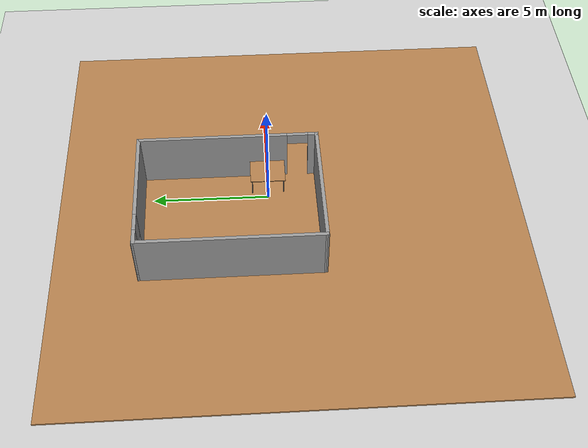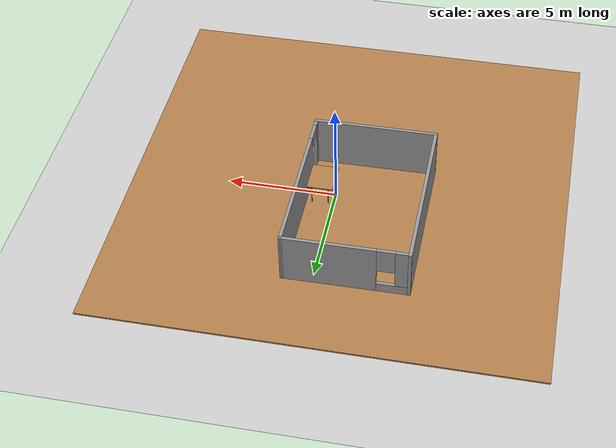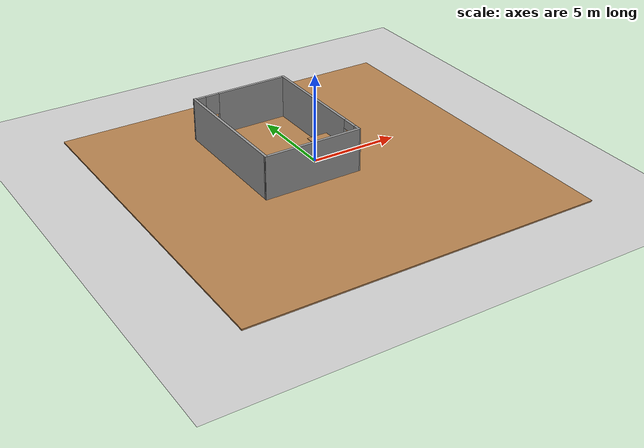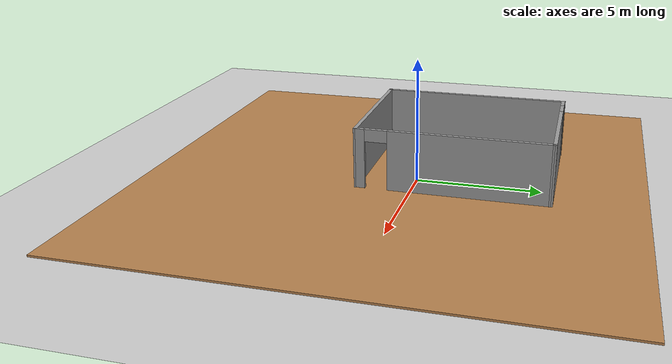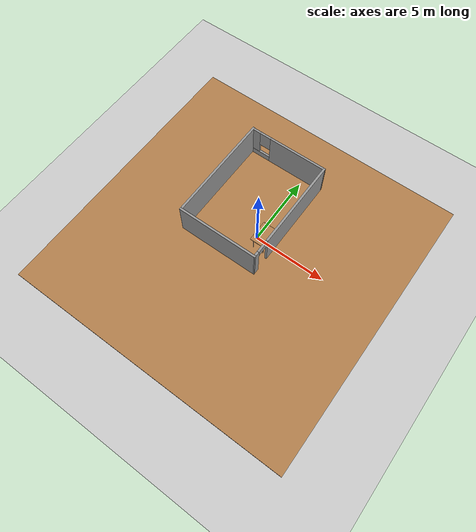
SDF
<sdf version="1.6">
 <world name="default">
  <light name="sun" type="directional">
   <pose>0 0 10 0 -0 0</pose>
   <diffuse>0.8 0.8 0.8 1</diffuse>
   <specular>0.1 0.1 0.1 1</specular>
   <attenuation>
    <range>1000</range>
    <constant>0.9</constant>
    <linear>0.01</linear>
    <quadratic>0.001</quadratic>
   </attenuation>
   <direction>-0.5 0.5 -1</direction>
  </light>
  <model name="ground_plane">
   <static>1</static>
   <link name="link">
    <collision name="collision">
     <geometry><plane><normal>0 0 1</normal><size>100 100</size></plane></geometry>
     <surface><friction><ode><mu>100</mu><mu2>50</mu2></ode></friction></surface>
    </collision>
    <visual name="visual">
     <cast_shadows>0</cast_shadows>
     <geometry><plane><normal>0 0 1</normal><size>100 100</size></plane></geometry>
     <material>
      <script><uri>file://media/materials/scripts/gazebo.material</uri><name>Gazebo/Grey</name></script>
     </material>
    </visual>
   </link>
  </model>
  <gravity>0 0 -9.8</gravity>
  <magnetic_field>6e-06 2.3e-05 -4.2e-05</magnetic_field>
  <atmosphere type="adiabatic"/>
  <physics name="default_physics" default="0" type="ode">
   <max_step_size>0.001</max_step_size>
   <real_time_factor>1</real_time_factor>
   <real_time_update_rate>1000</real_time_update_rate>
  </physics>
  <scene><ambient>0.4 0.4 0.4 1</ambient><background>0.7 0.7 0.7 1</background><shadows>1</shadows></scene>
  <spherical_coordinates>
   <surface_model>EARTH_WGS84</surface_model>
   <latitude_deg>0</latitude_deg>
   <longitude_deg>0</longitude_deg>
   <elevation>0</elevation>
   <heading_deg>0</heading_deg>
  </spherical_coordinates>
  <model name="IMR_table">
   <static>1</static>
   <link name="link">
    <collision name="surface">
     <pose>0 0 1 0 -0 0</pose>
     <geometry><box><size>1.5 1.2 0.03</size></box></geometry>
     <surface><friction><ode><mu>0.6</mu><mu2>0.6</mu2></ode></friction></surface>
    </collision>
    <visual name="visual1">
     <pose>0 0 1 0 -0 0</pose>
     <geometry><box><size>1.5 1.2 0.03</size></box></geometry>
     <material>
      <script>
       <uri>model://IMR_table/materials/scripts/</uri>
       <uri>model://IMR_table/materials/textures/</uri>
       <name>LIGHTWOOD</name>
      </script>
     </material>
    </visual>
    <collision name="front_left_leg">
     <pose>0.68 0.38 0.5 0 -0 0</pose>
     <geometry><cylinder><radius>0.02</radius><length>1</length></cylinder></geometry>
    </collision>
    <visual name="front_left_leg">
     <pose>0.68 0.38 0.5 0 -0 0</pose>
     <geometry><cylinder><radius>0.02</radius><length>1</length></cylinder></geometry>
     <material>
      <script><uri>file://media/materials/scripts/gazebo.material</uri><name>Gazebo/Grey</name></script>
     </material>
    </visual>
    <collision name="front_right_leg">
     <pose>0.68 -0.38 0.5 0 -0 0</pose>
     <geometry><cylinder><radius>0.02</radius><length>1</length></cylinder></geometry>
    </collision>
    <visual name="front_right_leg">
     <pose>0.68 -0.38 0.5 0 -0 0</pose>
     <geometry><cylinder><radius>0.02</radius><length>1</length></cylinder></geometry>
     <material>
      <script><uri>file://media/materials/scripts/gazebo.material</uri><name>Gazebo/Grey</name></script>
     </material>
    </visual>
    <collision name="back_right_leg">
     <pose>-0.68 -0.38 0.5 0 -0 0</pose>
     <geometry><cylinder><radius>0.02</radius><length>1</length></cylinder></geometry>
    </collision>
    <visual name="back_right_leg">
     <pose>-0.68 -0.38 0.5 0 -0 0</pose>
     <geometry><cylinder><radius>0.02</radius><length>1</length></cylinder></geometry>
     <material>
      <script><uri>file://media/materials/scripts/gazebo.material</uri><name>Gazebo/Grey</name></script>
     </material>
    </visual>
    <collision name="back_left_leg">
     <pose>-0.68 0.38 0.5 0 -0 0</pose>
     <geometry><cylinder><radius>0.02</radius><length>1</length></cylinder></geometry>
    </collision>
    <visual name="back_left_leg">
     <pose>-0.68 0.38 0.5 0 -0 0</pose>
     <geometry><cylinder><radius>0.02</radius><length>1</length></cylinder></geometry>
     <material>
      <script><uri>file://media/materials/scripts/gazebo.material</uri><name>Gazebo/Grey</name></script>
     </material>
    </visual>
   </link>
   <pose>0.6 0 0 0 0 -1.5708</pose>
  </model>
  <model name="wooden_plane">
   <static>1</static>
   <link name="link">
    <collision name="collision"><geometry><box><size>20 20 0.1</size></box></geometry></collision>
    <visual name="visual">
     <cast_shadows>0</cast_shadows>
     <geometry><box><size>20 20 0.1</size></box></geometry>
     <material>
      <script>
       <uri>model://wooden_plane/materials/scripts</uri>
       <uri>model://wooden_plane/materials/textures</uri>
       <name>vrc/wooden</name>
      </script>
     </material>
    </visual>
   </link>
   <pose>-0.517842 -0.95074 0 0 -0 0</pose>
  </model>
  <model name="IMR_test_walls">
   <pose>-1.45378 1.62535 0 0 -0 1.5708</pose>
   <link name="Wall_19">
    <collision name="Wall_19_Collision">
     <geometry><box><size>5.68015 0.15 2.5</size></box></geometry>
     <pose>0 0 1.25 0 -0 0</pose>
    </collision>
    <visual name="Wall_19_Visual">
     <pose>0 0 1.25 0 -0 0</pose>
     <geometry><box><size>5.68015 0.15 2.5</size></box></geometry>
     <material>
      <script><uri>file://media/materials/scripts/gazebo.material</uri><name>Gazebo/Grey</name></script>
      <ambient>1 1 1 1</ambient>
     </material>
     <meta><layer>0</layer></meta>
    </visual>
    <pose>-3.8 0 0 0 0 -1.56356</pose>
   </link>
   <link name="Wall_20">
    <pose>0.02 -2.765 0 0 -0 0</pose>
    <visual name="Wall_20_Visual_0">
     <pose>-3.6525 0 1.25 0 -0 0</pose>
     <geometry><box><size>0.445 0.15 2.5</size></box></geometry>
     <material>
      <script><uri>file://media/materials/scripts/gazebo.material</uri><name>Gazebo/Grey</name></script>
      <ambient>1 1 1 1</ambient>
     </material>
     <meta><layer>0</layer></meta>
    </visual>
    <collision name="Wall_20_Collision_0">
     <geometry><box><size>0.445 0.15 2.5</size></box></geometry>
     <pose>-3.6525 0 1.25 0 -0 0</pose>
    </collision>
    <visual name="Wall_20_Visual_1">
     <pose>0.6725 0 1.25 0 -0 0</pose>
     <geometry><box><size>6.405 0.15 2.5</size></box></geometry>
     <material>
      <script><uri>file://media/materials/scripts/gazebo.material</uri><name>Gazebo/Grey</name></script>
      <ambient>1 1 1 1</ambient>
     </material>
     <meta><layer>0</layer></meta>
    </visual>
    <collision name="Wall_20_Collision_1">
     <geometry><box><size>6.405 0.15 2.5</size></box></geometry>
     <pose>0.6725 0 1.25 0 -0 0</pose>
    </collision>
    <visual name="Wall_20_Visual_2">
     <pose>-2.98 0 2.25 0 -0 0</pose>
     <geometry><box><size>0.9 0.15 0.5</size></box></geometry>
     <material>
      <script><uri>file://media/materials/scripts/gazebo.material</uri><name>Gazebo/Grey</name></script>
      <ambient>1 1 1 1</ambient>
     </material>
     <meta><layer>0</layer></meta>
    </visual>
    <collision name="Wall_20_Collision_2">
     <geometry><box><size>0.9 0.15 0.5</size></box></geometry>
     <pose>-2.98 0 2.25 0 -0 0</pose>
    </collision>
   </link>
   <link name="Wall_21">
    <pose>3.8 0 0 0 -0 1.57803</pose>
    <visual name="Wall_21_Visual_0">
     <pose>-0.747848 0 1.25 0 -0 0</pose>
     <geometry><box><size>4.18445 0.15 2.5</size></box></geometry>
     <material>
      <script><uri>file://media/materials/scripts/gazebo.material</uri><name>Gazebo/Grey</name></script>
      <ambient>1 1 1 1</ambient>
     </material>
     <meta><layer>0</layer></meta>
    </visual>
    <collision name="Wall_21_Collision_0">
     <geometry><box><size>4.18445 0.15 2.5</size></box></geometry>
     <pose>-0.747848 0 1.25 0 -0 0</pose>
    </collision>
    <visual name="Wall_21_Visual_1">
     <pose>2.09222 0 0.25 0 -0 0</pose>
     <geometry><box><size>1.4957 0.15 0.5</size></box></geometry>
     <material>
      <script><uri>file://media/materials/scripts/gazebo.material</uri><name>Gazebo/Grey</name></script>
      <ambient>1 1 1 1</ambient>
     </material>
     <meta><layer>0</layer></meta>
    </visual>
    <collision name="Wall_21_Collision_1">
     <geometry><box><size>1.4957 0.15 0.5</size></box></geometry>
     <pose>2.09222 0 0.25 0 -0 0</pose>
    </collision>
    <visual name="Wall_21_Visual_2">
     <pose>2.49222 0 1.5 0 -0 0</pose>
     <geometry><box><size>0.695697 0.15 2</size></box></geometry>
     <material>
      <script><uri>file://media/materials/scripts/gazebo.material</uri><name>Gazebo/Grey</name></script>
      <ambient>1 1 1 1</ambient>
     </material>
     <meta><layer>0</layer></meta>
    </visual>
    <collision name="Wall_21_Collision_2">
     <geometry><box><size>0.695697 0.15 2</size></box></geometry>
     <pose>2.49222 0 1.5 0 -0 0</pose>
    </collision>
    <visual name="Wall_21_Visual_3">
     <pose>1.74438 0 1.9 0 -0 0</pose>
     <geometry><box><size>0.8 0.15 1.2</size></box></geometry>
     <material>
      <script><uri>file://media/materials/scripts/gazebo.material</uri><name>Gazebo/Grey</name></script>
      <ambient>1 1 1 1</ambient>
     </material>
     <meta><layer>0</layer></meta>
    </visual>
    <collision name="Wall_21_Collision_3">
     <geometry><box><size>0.8 0.15 1.2</size></box></geometry>
     <pose>1.74438 0 1.9 0 -0 0</pose>
    </collision>
   </link>
   <link name="Wall_22">
    <collision name="Wall_22_Collision">
     <geometry><box><size>7.75 0.15 2.5</size></box></geometry>
     <pose>0 0 1.25 0 -0 0</pose>
    </collision>
    <visual name="Wall_22_Visual">
     <pose>0 0 1.25 0 -0 0</pose>
     <geometry><box><size>7.75 0.15 2.5</size></box></geometry>
     <material>
      <script><uri>file://media/materials/scripts/gazebo.material</uri><name>Gazebo/Grey</name></script>
      <ambient>1 1 1 1</ambient>
     </material>
     <meta><layer>0</layer></meta>
    </visual>
    <pose>0 2.765 0 0 -0 3.14159</pose>
   </link>
   <static>1</static>
  </model>
 </world>
</sdf>
